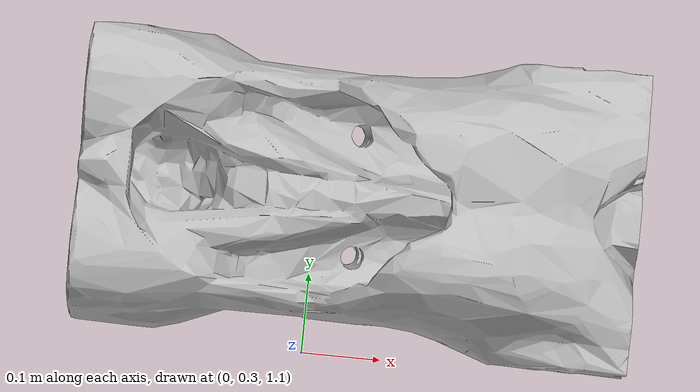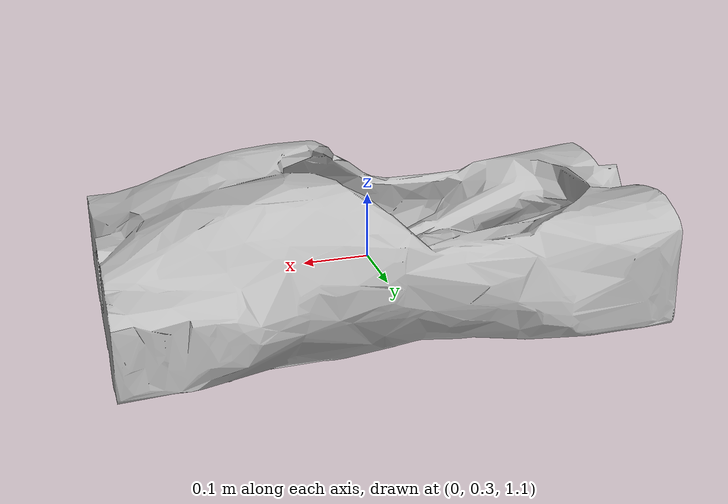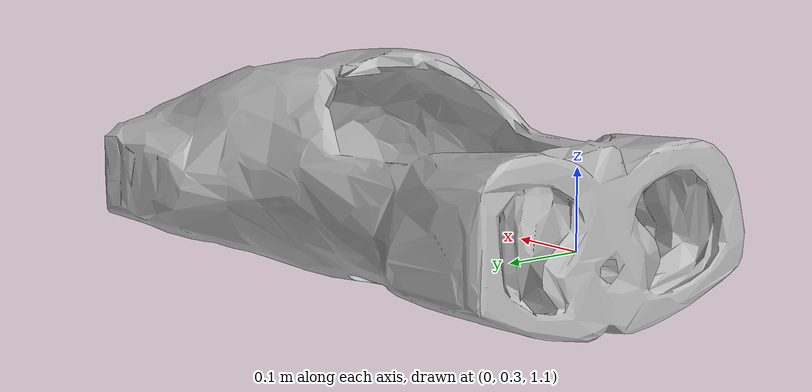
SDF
<sdf version='1.6'>
  <model name='body'>
    <link name='/world'>
      <pose frame=''>0 0 0 0 -0 0</pose>
      <inertial>
        <pose frame=''>0 0.5 1.1 0 -0 0</pose>
        <mass>30</mass>
        <inertia>
          <ixx>0.5</ixx>
          <ixy>0</ixy>
          <ixz>0</ixz>
          <iyy>0.5</iyy>
          <iyz>0</iyz>
          <izz>0.5</izz>
        </inertia>
      </inertial>
      <collision name='/world_fixed_joint_lump__/torso_link_collision'>
        <pose frame=''>0 0.5 1.1 -1.5708 -0 -1.5708</pose>
        <geometry>
          <mesh>
            <scale>1 1 1</scale>
            <uri>model://surgical_sim/model/meshes/stl/body/torso_simp.stl</uri>
          </mesh>
        </geometry>
        <surface>
          <contact>
            <ode>
              <kp>1e+06</kp>
              <kd>1</kd>
              <max_vel>0.01</max_vel>
              <min_depth>0.003</min_depth>
            </ode>
          </contact>
          <friction>
            <ode>
              <mu>0.112</mu>
              <mu2>0.112</mu2>
            </ode>
          </friction>
        </surface>
      </collision>
      <visual name='/world_fixed_joint_lump__/torso_link_visual'>
        <pose frame=''>0 0.5 1.1 -1.5708 -0 -1.5708</pose>
        <geometry>
          <mesh>
            <scale>1 1 1</scale>
            <uri>model://surgical_sim/model/meshes/dae/body/torso.dae</uri>
          </mesh>
        </geometry>
        <material>
          <script>
            <uri>__default__</uri>
            <name>__default__</name>
          </script>
        </material>
      </visual>
      <gravity>0</gravity>
      <velocity_decay/>
      <self_collide>1</self_collide>
    </link>
  </model>
</sdf>
